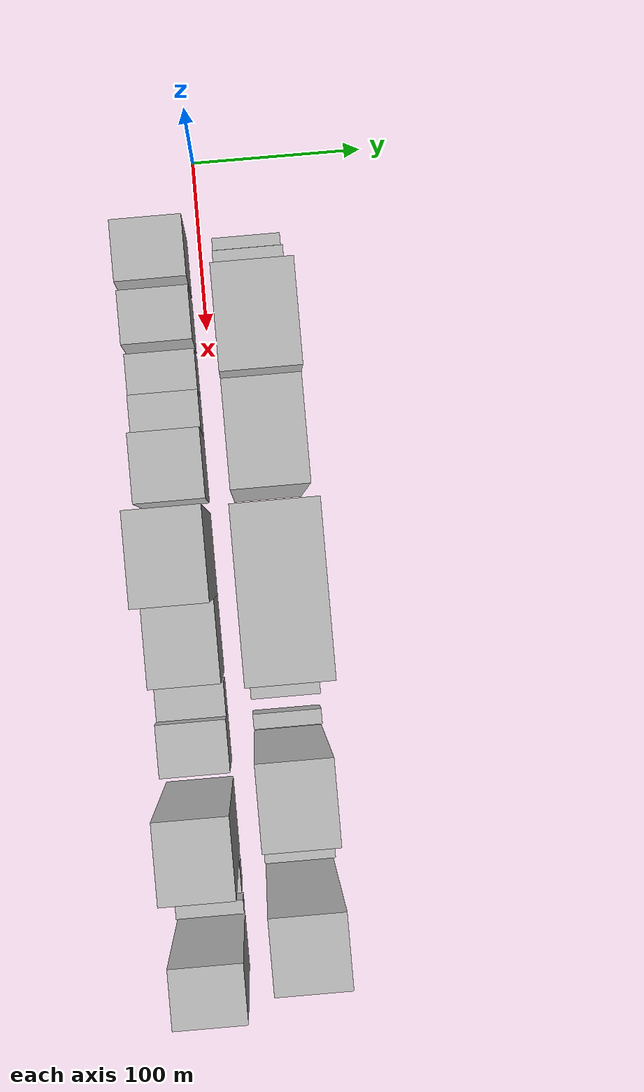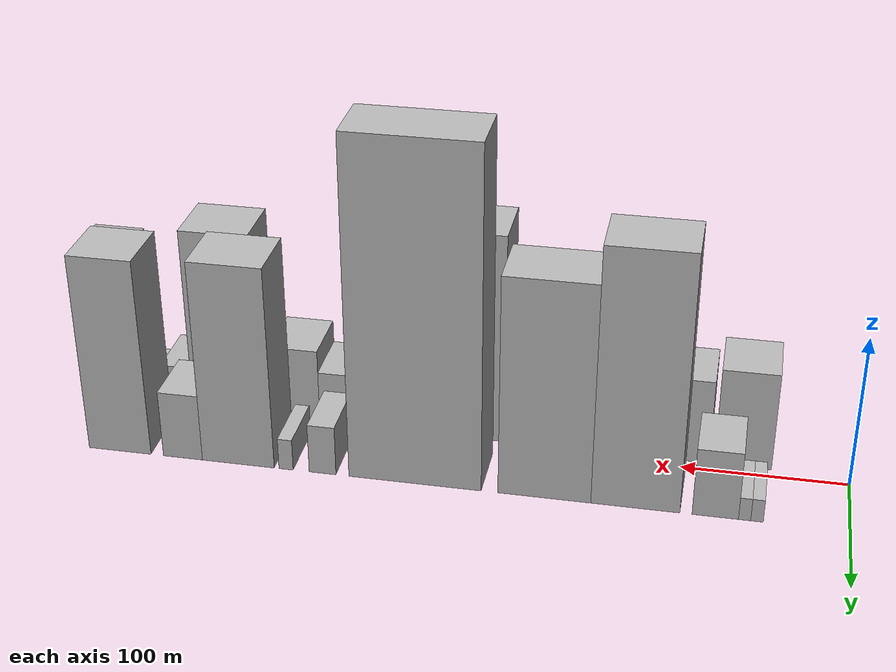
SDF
<sdf version="1.6">
 <world name="default">
  <scene>
   <sky><clouds><speed>12</speed></clouds></sky>
   <ambient>0.4 0.4 0.4 1</ambient>
   <background>0.7 0.7 0.7 1</background>
   <shadows>1</shadows>
  </scene>
  <gravity>0 0 -9.8066</gravity>
  <magnetic_field>6e-06 2.3e-05 -4.2e-05</magnetic_field>
  <physics default="0" name="default_physics" type="ode">
   <ode>
    <solver>
     <type>quick</type>
     <iters>10</iters>
     <sor>1.0</sor>
     <use_dynamic_moi_rescaling>0</use_dynamic_moi_rescaling>
    </solver>
    <constraints>
     <cfm>0</cfm>
     <erp>0.2</erp>
     <contact_max_correcting_vel>100</contact_max_correcting_vel>
     <contact_surface_layer>0.001</contact_surface_layer>
    </constraints>
   </ode>
   <max_step_size>0.004</max_step_size>
   <real_time_factor>1</real_time_factor>
   <real_time_update_rate>250</real_time_update_rate>
  </physics>
  <light name="sun" type="directional">
   <pose>0 0 10 0 0 0</pose>
   <diffuse>0.8 0.8 0.8 1</diffuse>
   <specular>0.2 0.2 0.2 1</specular>
   <attenuation>
    <range>1000</range>
    <constant>0.9</constant>
    <linear>0.01</linear>
    <quadratic>0.001</quadratic>
   </attenuation>
   <direction>-0.5 0.1 -0.9</direction>
  </light>
  <model name="building_1">
   <static>1</static>
   <pose>52.5862 27.5000 0 0.000000 0.000000 1.570796</pose>
   <link name="link">
    <pose>0 0 7.50 0 0 0</pose>
    <collision name="collision"><geometry><box><size>40.0000 7.1725 15.0000</size></box></geometry></collision>
    <visual name="visual">
     <cast_shadows>0</cast_shadows>
     <geometry><box><size>40.0000 7.1725 15.0000</size></box></geometry>
     <material>
      <script>
       <uri>model://HANNAS_wall/materials/scripts</uri>
       <uri>model://HANNAS_wall/materials/textures</uri>
       <name>vrc/HANNAS_wall</name>
      </script>
     </material>
    </visual>
   </link>
  </model>
  <model name="building_2">
   <static>1</static>
   <pose>59.6417 27.5000 0 0.000000 0.000000 1.570796</pose>
   <link name="link">
    <pose>0 0 7.50 0 0 0</pose>
    <collision name="collision"><geometry><box><size>40.0000 6.9385 15.0000</size></box></geometry></collision>
    <visual name="visual">
     <cast_shadows>0</cast_shadows>
     <geometry><box><size>40.0000 6.9385 15.0000</size></box></geometry>
     <material>
      <script>
       <uri>model://HANNAS_wall/materials/scripts</uri>
       <uri>model://HANNAS_wall/materials/textures</uri>
       <name>vrc/HANNAS_wall</name>
      </script>
     </material>
    </visual>
   </link>
  </model>
  <model name="building_3">
   <static>1</static>
   <pose>76.4213 27.5000 0 0.000000 0.000000 1.570796</pose>
   <link name="link">
    <pose>0 0 22.50 0 0 0</pose>
    <collision name="collision"><geometry><box><size>40.0000 26.6205 45.0000</size></box></geometry></collision>
    <visual name="visual">
     <cast_shadows>0</cast_shadows>
     <geometry><box><size>40.0000 26.6205 45.0000</size></box></geometry>
     <material>
      <script>
       <uri>model://HANNAS_wall/materials/scripts</uri>
       <uri>model://HANNAS_wall/materials/textures</uri>
       <name>vrc/HANNAS_wall</name>
      </script>
     </material>
    </visual>
   </link>
  </model>
  <model name="building_4">
   <static>1</static>
   <pose>122.6870 27.5000 0 0.000000 0.000000 1.570796</pose>
   <link name="link">
    <pose>0 0 84.00 0 0 0</pose>
    <collision name="collision"><geometry><box><size>40.0000 51.9109 168.0000</size></box></geometry></collision>
    <visual name="visual">
     <cast_shadows>0</cast_shadows>
     <geometry><box><size>40.0000 51.9109 168.0000</size></box></geometry>
     <material>
      <script>
       <uri>model://HANNAS_wall/materials/scripts</uri>
       <uri>model://HANNAS_wall/materials/textures</uri>
       <name>vrc/HANNAS_wall</name>
      </script>
     </material>
    </visual>
   </link>
  </model>
  <model name="building_5">
   <static>1</static>
   <pose>176.1546 27.5000 0 0.000000 0.000000 1.570796</pose>
   <link name="link">
    <pose>0 0 72.00 0 0 0</pose>
    <collision name="collision"><geometry><box><size>40.0000 55.0244 144.0000</size></box></geometry></collision>
    <visual name="visual">
     <cast_shadows>0</cast_shadows>
     <geometry><box><size>40.0000 55.0244 144.0000</size></box></geometry>
     <material>
      <script>
       <uri>model://HANNAS_wall/materials/scripts</uri>
       <uri>model://HANNAS_wall/materials/textures</uri>
       <name>vrc/HANNAS_wall</name>
      </script>
     </material>
    </visual>
   </link>
  </model>
  <model name="building_6">
   <static>1</static>
   <pose>253.8679 27.5000 0 0.000000 0.000000 1.570796</pose>
   <link name="link">
    <pose>0 0 111.00 0 0 0</pose>
    <collision name="collision"><geometry><box><size>40.0000 80.4021 222.0000</size></box></geometry></collision>
    <visual name="visual">
     <cast_shadows>0</cast_shadows>
     <geometry><box><size>40.0000 80.4021 222.0000</size></box></geometry>
     <material>
      <script>
       <uri>model://HANNAS_wall/materials/scripts</uri>
       <uri>model://HANNAS_wall/materials/textures</uri>
       <name>vrc/HANNAS_wall</name>
      </script>
     </material>
    </visual>
   </link>
  </model>
  <model name="building_7">
   <static>1</static>
   <pose>310.3501 27.5000 0 0.000000 0.000000 1.570796</pose>
   <link name="link">
    <pose>0 0 16.50 0 0 0</pose>
    <collision name="collision"><geometry><box><size>40.0000 16.5623 33.0000</size></box></geometry></collision>
    <visual name="visual">
     <cast_shadows>0</cast_shadows>
     <geometry><box><size>40.0000 16.5623 33.0000</size></box></geometry>
     <material>
      <script>
       <uri>model://HANNAS_wall/materials/scripts</uri>
       <uri>model://HANNAS_wall/materials/textures</uri>
       <name>vrc/HANNAS_wall</name>
      </script>
     </material>
    </visual>
   </link>
  </model>
  <model name="building_8">
   <static>1</static>
   <pose>333.0419 27.5000 0 0.000000 0.000000 1.570796</pose>
   <link name="link">
    <pose>0 0 10.50 0 0 0</pose>
    <collision name="collision"><geometry><box><size>40.0000 8.8214 21.0000</size></box></geometry></collision>
    <visual name="visual">
     <cast_shadows>0</cast_shadows>
     <geometry><box><size>40.0000 8.8214 21.0000</size></box></geometry>
     <material>
      <script>
       <uri>model://HANNAS_wall/materials/scripts</uri>
       <uri>model://HANNAS_wall/materials/textures</uri>
       <name>vrc/HANNAS_wall</name>
      </script>
     </material>
    </visual>
   </link>
  </model>
  <model name="building_9">
   <static>1</static>
   <pose>363.0680 27.5000 0 0.000000 0.000000 1.570796</pose>
   <link name="link">
    <pose>0 0 67.50 0 0 0</pose>
    <collision name="collision"><geometry><box><size>40.0000 45.2308 135.0000</size></box></geometry></collision>
    <visual name="visual">
     <cast_shadows>0</cast_shadows>
     <geometry><box><size>40.0000 45.2308 135.0000</size></box></geometry>
     <material>
      <script>
       <uri>model://HANNAS_wall/materials/scripts</uri>
       <uri>model://HANNAS_wall/materials/textures</uri>
       <name>vrc/HANNAS_wall</name>
      </script>
     </material>
    </visual>
   </link>
  </model>
  <model name="building_10">
   <static>1</static>
   <pose>398.0958 27.5000 0 0.000000 0.000000 1.570796</pose>
   <link name="link">
    <pose>0 0 22.50 0 0 0</pose>
    <collision name="collision"><geometry><box><size>40.0000 24.8249 45.0000</size></box></geometry></collision>
    <visual name="visual">
     <cast_shadows>0</cast_shadows>
     <geometry><box><size>40.0000 24.8249 45.0000</size></box></geometry>
     <material>
      <script>
       <uri>model://HANNAS_wall/materials/scripts</uri>
       <uri>model://HANNAS_wall/materials/textures</uri>
       <name>vrc/HANNAS_wall</name>
      </script>
     </material>
    </visual>
   </link>
  </model>
  <model name="building_11">
   <static>1</static>
   <pose>438.3872 27.5000 0 0.000000 0.000000 1.570796</pose>
   <link name="link">
    <pose>0 0 66.00 0 0 0</pose>
    <collision name="collision"><geometry><box><size>40.0000 39.7577 132.0000</size></box></geometry></collision>
    <visual name="visual">
     <cast_shadows>0</cast_shadows>
     <geometry><box><size>40.0000 39.7577 132.0000</size></box></geometry>
     <material>
      <script>
       <uri>model://HANNAS_wall/materials/scripts</uri>
       <uri>model://HANNAS_wall/materials/textures</uri>
       <name>vrc/HANNAS_wall</name>
      </script>
     </material>
    </visual>
   </link>
  </model>
  <model name="building_12">
   <static>1</static>
   <pose>63.1064 -27.5000 0 0.000000 0.000000 1.570796</pose>
   <link name="link">
    <pose>0 0 33.00 0 0 0</pose>
    <collision name="collision"><geometry><box><size>40.0000 34.2128 66.0000</size></box></geometry></collision>
    <visual name="visual">
     <cast_shadows>0</cast_shadows>
     <geometry><box><size>40.0000 34.2128 66.0000</size></box></geometry>
     <material>
      <script>
       <uri>model://HANNAS_wall/materials/scripts</uri>
       <uri>model://HANNAS_wall/materials/textures</uri>
       <name>vrc/HANNAS_wall</name>
      </script>
     </material>
    </visual>
   </link>
  </model>
  <model name="building_13">
   <static>1</static>
   <pose>98.3909 -27.5000 0 0.000000 0.000000 1.570796</pose>
   <link name="link">
    <pose>0 0 28.50 0 0 0</pose>
    <collision name="collision"><geometry><box><size>40.0000 30.3562 57.0000</size></box></geometry></collision>
    <visual name="visual">
     <cast_shadows>0</cast_shadows>
     <geometry><box><size>40.0000 30.3562 57.0000</size></box></geometry>
     <material>
      <script>
       <uri>model://HANNAS_wall/materials/scripts</uri>
       <uri>model://HANNAS_wall/materials/textures</uri>
       <name>vrc/HANNAS_wall</name>
      </script>
     </material>
    </visual>
   </link>
  </model>
  <model name="building_14">
   <static>1</static>
   <pose>128.3866 -27.5000 0 0.000000 0.000000 1.570796</pose>
   <link name="link">
    <pose>0 0 21.00 0 0 0</pose>
    <collision name="collision"><geometry><box><size>40.0000 23.6353 42.0000</size></box></geometry></collision>
    <visual name="visual">
     <cast_shadows>0</cast_shadows>
     <geometry><box><size>40.0000 23.6353 42.0000</size></box></geometry>
     <material>
      <script>
       <uri>model://HANNAS_wall/materials/scripts</uri>
       <uri>model://HANNAS_wall/materials/textures</uri>
       <name>vrc/HANNAS_wall</name>
      </script>
     </material>
    </visual>
   </link>
  </model>
  <model name="building_15">
   <static>1</static>
   <pose>151.9948 -27.5000 0 0.000000 0.000000 1.570796</pose>
   <link name="link">
    <pose>0 0 22.50 0 0 0</pose>
    <collision name="collision"><geometry><box><size>40.0000 23.5810 45.0000</size></box></geometry></collision>
    <visual name="visual">
     <cast_shadows>0</cast_shadows>
     <geometry><box><size>40.0000 23.5810 45.0000</size></box></geometry>
     <material>
      <script>
       <uri>model://HANNAS_wall/materials/scripts</uri>
       <uri>model://HANNAS_wall/materials/textures</uri>
       <name>vrc/HANNAS_wall</name>
      </script>
     </material>
    </visual>
   </link>
  </model>
  <model name="building_16">
   <static>1</static>
   <pose>183.3868 -27.5000 0 0.000000 0.000000 1.570796</pose>
   <link name="link">
    <pose>0 0 34.50 0 0 0</pose>
    <collision name="collision"><geometry><box><size>40.0000 39.2031 69.0000</size></box></geometry></collision>
    <visual name="visual">
     <cast_shadows>0</cast_shadows>
     <geometry><box><size>40.0000 39.2031 69.0000</size></box></geometry>
     <material>
      <script>
       <uri>model://HANNAS_wall/materials/scripts</uri>
       <uri>model://HANNAS_wall/materials/textures</uri>
       <name>vrc/HANNAS_wall</name>
      </script>
     </material>
    </visual>
   </link>
  </model>
  <model name="building_17">
   <static>1</static>
   <pose>233.5523 -27.5000 0 0.000000 0.000000 1.570796</pose>
   <link name="link">
    <pose>0 0 70.50 0 0 0</pose>
    <collision name="collision"><geometry><box><size>40.0000 49.1278 141.0000</size></box></geometry></collision>
    <visual name="visual">
     <cast_shadows>0</cast_shadows>
     <geometry><box><size>40.0000 49.1278 141.0000</size></box></geometry>
     <material>
      <script>
       <uri>model://HANNAS_wall/materials/scripts</uri>
       <uri>model://HANNAS_wall/materials/textures</uri>
       <name>vrc/HANNAS_wall</name>
      </script>
     </material>
    </visual>
   </link>
  </model>
  <model name="building_18">
   <static>1</static>
   <pose>281.1317 -27.5000 0 0.000000 0.000000 1.570796</pose>
   <link name="link">
    <pose>0 0 39.00 0 0 0</pose>
    <collision name="collision"><geometry><box><size>40.0000 46.0310 78.0000</size></box></geometry></collision>
    <visual name="visual">
     <cast_shadows>0</cast_shadows>
     <geometry><box><size>40.0000 46.0310 78.0000</size></box></geometry>
     <material>
      <script>
       <uri>model://HANNAS_wall/materials/scripts</uri>
       <uri>model://HANNAS_wall/materials/textures</uri>
       <name>vrc/HANNAS_wall</name>
      </script>
     </material>
    </visual>
   </link>
  </model>
  <model name="building_19">
   <static>1</static>
   <pose>316.8861 -27.5000 0 0.000000 0.000000 1.570796</pose>
   <link name="link">
    <pose>0 0 18.00 0 0 0</pose>
    <collision name="collision"><geometry><box><size>40.0000 19.4779 36.0000</size></box></geometry></collision>
    <visual name="visual">
     <cast_shadows>0</cast_shadows>
     <geometry><box><size>40.0000 19.4779 36.0000</size></box></geometry>
     <material>
      <script>
       <uri>model://HANNAS_wall/materials/scripts</uri>
       <uri>model://HANNAS_wall/materials/textures</uri>
       <name>vrc/HANNAS_wall</name>
      </script>
     </material>
    </visual>
   </link>
  </model>
  <model name="building_20">
   <static>1</static>
   <pose>341.6942 -27.5000 0 0.000000 0.000000 1.570796</pose>
   <link name="link">
    <pose>0 0 25.50 0 0 0</pose>
    <collision name="collision"><geometry><box><size>40.0000 30.1382 51.0000</size></box></geometry></collision>
    <visual name="visual">
     <cast_shadows>0</cast_shadows>
     <geometry><box><size>40.0000 30.1382 51.0000</size></box></geometry>
     <material>
      <script>
       <uri>model://HANNAS_wall/materials/scripts</uri>
       <uri>model://HANNAS_wall/materials/textures</uri>
       <name>vrc/HANNAS_wall</name>
      </script>
     </material>
    </visual>
   </link>
  </model>
  <model name="building_21">
   <static>1</static>
   <pose>388.3381 -27.5000 0 0.000000 0.000000 1.570796</pose>
   <link name="link">
    <pose>0 0 63.00 0 0 0</pose>
    <collision name="collision"><geometry><box><size>40.0000 43.1497 126.0000</size></box></geometry></collision>
    <visual name="visual">
     <cast_shadows>0</cast_shadows>
     <geometry><box><size>40.0000 43.1497 126.0000</size></box></geometry>
     <material>
      <script>
       <uri>model://HANNAS_wall/materials/scripts</uri>
       <uri>model://HANNAS_wall/materials/textures</uri>
       <name>vrc/HANNAS_wall</name>
      </script>
     </material>
    </visual>
   </link>
  </model>
  <model name="building_22">
   <static>1</static>
   <pose>421.6806 -27.5000 0 0.000000 0.000000 1.570796</pose>
   <link name="link">
    <pose>0 0 15.00 0 0 0</pose>
    <collision name="collision"><geometry><box><size>40.0000 15.5352 30.0000</size></box></geometry></collision>
    <visual name="visual">
     <cast_shadows>0</cast_shadows>
     <geometry><box><size>40.0000 15.5352 30.0000</size></box></geometry>
     <material>
      <script>
       <uri>model://HANNAS_wall/materials/scripts</uri>
       <uri>model://HANNAS_wall/materials/textures</uri>
       <name>vrc/HANNAS_wall</name>
      </script>
     </material>
    </visual>
   </link>
  </model>
  <model name="building_23">
   <static>1</static>
   <pose>440.4820 -27.5000 0 0.000000 0.000000 1.570796</pose>
   <link name="link">
    <pose>0 0 9.00 0 0 0</pose>
    <collision name="collision"><geometry><box><size>40.0000 8.0678 18.0000</size></box></geometry></collision>
    <visual name="visual">
     <cast_shadows>0</cast_shadows>
     <geometry><box><size>40.0000 8.0678 18.0000</size></box></geometry>
     <material>
      <script>
       <uri>model://HANNAS_wall/materials/scripts</uri>
       <uri>model://HANNAS_wall/materials/textures</uri>
       <name>vrc/HANNAS_wall</name>
      </script>
     </material>
    </visual>
   </link>
  </model>
  <model name="building_24">
   <static>1</static>
   <pose>463.7548 -27.5000 0 0.000000 0.000000 1.570796</pose>
   <link name="link">
    <pose>0 0 52.50 0 0 0</pose>
    <collision name="collision"><geometry><box><size>40.0000 32.4778 105.0000</size></box></geometry></collision>
    <visual name="visual">
     <cast_shadows>0</cast_shadows>
     <geometry><box><size>40.0000 32.4778 105.0000</size></box></geometry>
     <material>
      <script>
       <uri>model://HANNAS_wall/materials/scripts</uri>
       <uri>model://HANNAS_wall/materials/textures</uri>
       <name>vrc/HANNAS_wall</name>
      </script>
     </material>
    </visual>
   </link>
  </model>
 </world>
</sdf>
